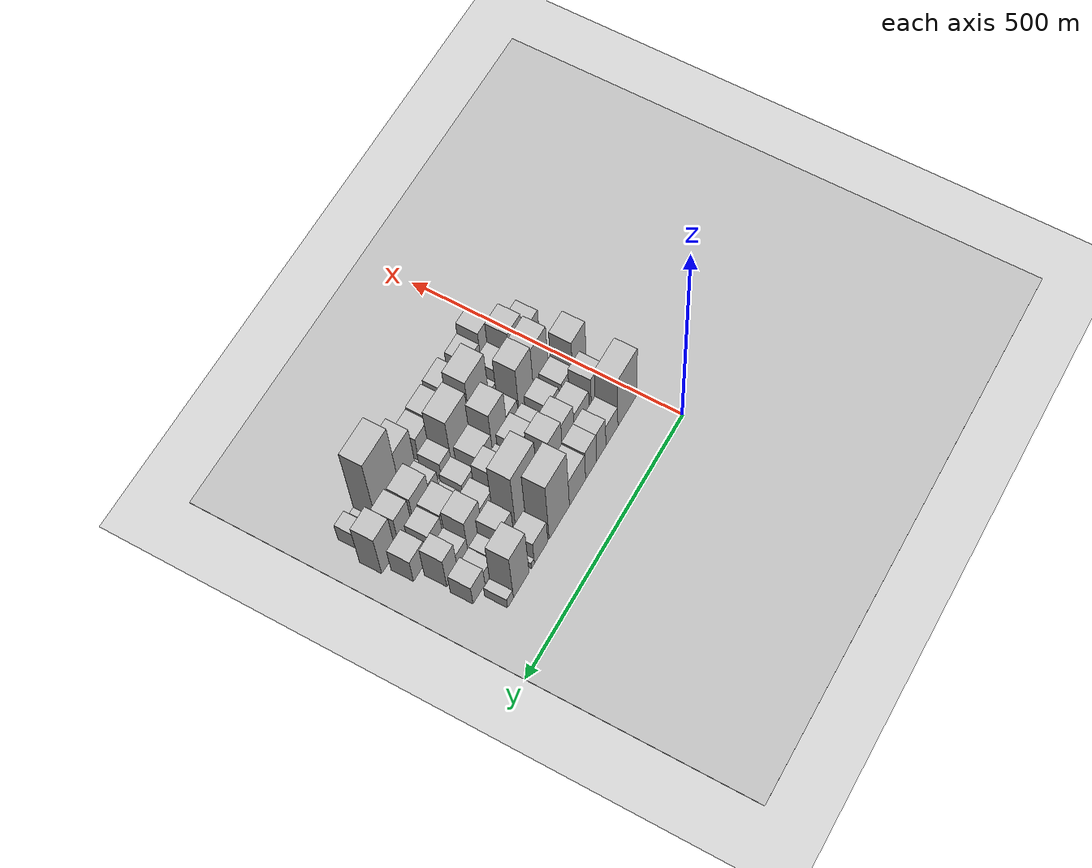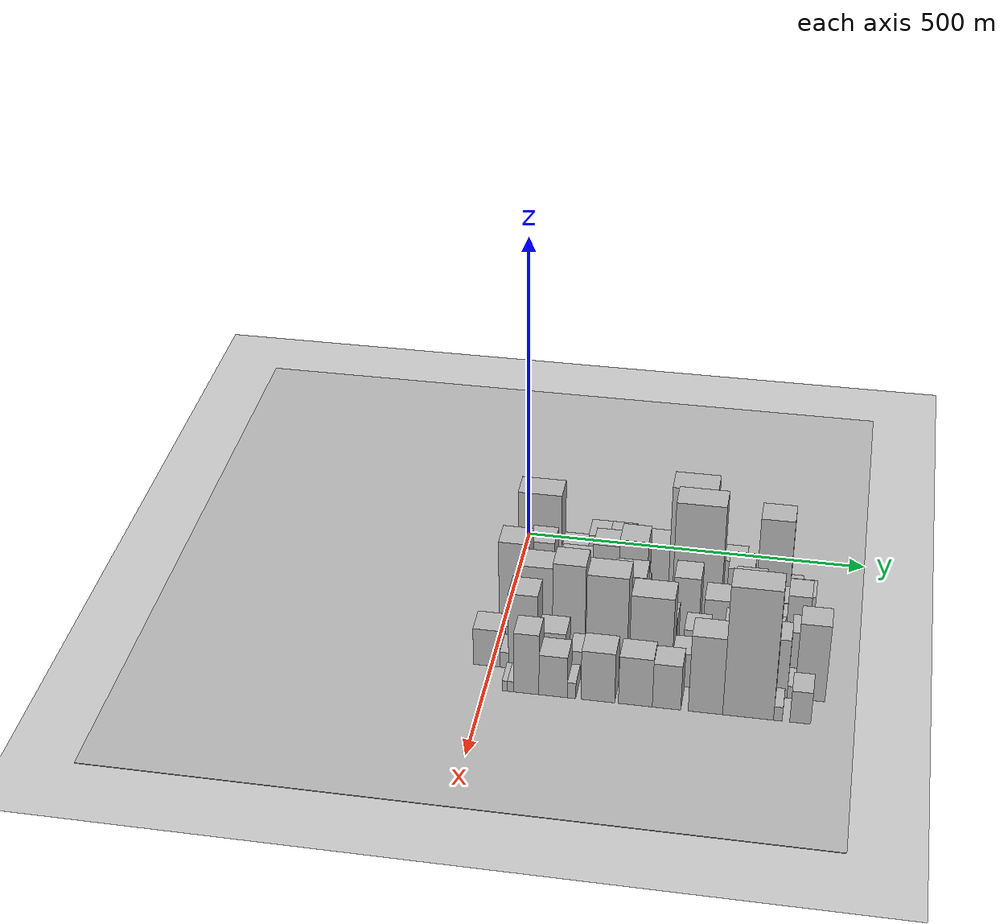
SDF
<sdf version="1.6">
 <world name="default">
  <include><name>ground_plane_1</name><uri>model://HANNAS_ground_plane</uri></include>
  <include>
   <name>ground_plane_2</name>
   <uri>model://HANNAS_ground_plane</uri>
   <pose>100 0 0  0 0 0</pose>
  </include>
  <model name="building_23">
   <static>1</static>
   <pose>100.0000 36.1751 0 0.000000 0.000000 0.000000</pose>
   <link name="link">
    <pose>0 0 79.50 0 0 0</pose>
    <collision name="collision"><geometry><box><size>40.0000 63.0457 159.0000</size></box></geometry></collision>
    <visual name="visual">
     <cast_shadows>0</cast_shadows>
     <geometry><box><size>40.0000 63.0457 159.0000</size></box></geometry>
     <material>
      <script>
       <uri>model://HANNAS_wall/materials/scripts</uri>
       <uri>model://HANNAS_wall/materials/textures</uri>
       <name>vrc/HANNAS_wall</name>
      </script>
     </material>
    </visual>
   </link>
  </model>
  <model name="building_24">
   <static>1</static>
   <pose>100.0000 87.2624 0 0.000000 0.000000 0.000000</pose>
   <link name="link">
    <pose>0 0 34.50 0 0 0</pose>
    <collision name="collision"><geometry><box><size>40.0000 39.1290 69.0000</size></box></geometry></collision>
    <visual name="visual">
     <cast_shadows>0</cast_shadows>
     <geometry><box><size>40.0000 39.1290 69.0000</size></box></geometry>
     <material>
      <script>
       <uri>model://HANNAS_wall/materials/scripts</uri>
       <uri>model://HANNAS_wall/materials/textures</uri>
       <name>vrc/HANNAS_wall</name>
      </script>
     </material>
    </visual>
   </link>
  </model>
  <model name="building_25">
   <static>1</static>
   <pose>100.0000 121.6511 0 0.000000 0.000000 0.000000</pose>
   <link name="link">
    <pose>0 0 48.00 0 0 0</pose>
    <collision name="collision"><geometry><box><size>40.0000 29.6482 96.0000</size></box></geometry></collision>
    <visual name="visual">
     <cast_shadows>0</cast_shadows>
     <geometry><box><size>40.0000 29.6482 96.0000</size></box></geometry>
     <material>
      <script>
       <uri>model://HANNAS_wall/materials/scripts</uri>
       <uri>model://HANNAS_wall/materials/textures</uri>
       <name>vrc/HANNAS_wall</name>
      </script>
     </material>
    </visual>
   </link>
  </model>
  <model name="building_26">
   <static>1</static>
   <pose>100.0000 154.2542 0 0.000000 0.000000 0.000000</pose>
   <link name="link">
    <pose>0 0 48.00 0 0 0</pose>
    <collision name="collision"><geometry><box><size>40.0000 35.5580 96.0000</size></box></geometry></collision>
    <visual name="visual">
     <cast_shadows>0</cast_shadows>
     <geometry><box><size>40.0000 35.5580 96.0000</size></box></geometry>
     <material>
      <script>
       <uri>model://HANNAS_wall/materials/scripts</uri>
       <uri>model://HANNAS_wall/materials/textures</uri>
       <name>vrc/HANNAS_wall</name>
      </script>
     </material>
    </visual>
   </link>
  </model>
  <model name="building_27">
   <static>1</static>
   <pose>100.0000 197.6740 0 0.000000 0.000000 0.000000</pose>
   <link name="link">
    <pose>0 0 45.00 0 0 0</pose>
    <collision name="collision"><geometry><box><size>40.0000 51.2816 90.0000</size></box></geometry></collision>
    <visual name="visual">
     <cast_shadows>0</cast_shadows>
     <geometry><box><size>40.0000 51.2816 90.0000</size></box></geometry>
     <material>
      <script>
       <uri>model://HANNAS_wall/materials/scripts</uri>
       <uri>model://HANNAS_wall/materials/textures</uri>
       <name>vrc/HANNAS_wall</name>
      </script>
     </material>
    </visual>
   </link>
  </model>
  <model name="building_28">
   <static>1</static>
   <pose>100.0000 255.1287 0 0.000000 0.000000 0.000000</pose>
   <link name="link">
    <pose>0 0 96.00 0 0 0</pose>
    <collision name="collision"><geometry><box><size>40.0000 63.6278 192.0000</size></box></geometry></collision>
    <visual name="visual">
     <cast_shadows>0</cast_shadows>
     <geometry><box><size>40.0000 63.6278 192.0000</size></box></geometry>
     <material>
      <script>
       <uri>model://HANNAS_wall/materials/scripts</uri>
       <uri>model://HANNAS_wall/materials/textures</uri>
       <name>vrc/HANNAS_wall</name>
      </script>
     </material>
    </visual>
   </link>
  </model>
  <model name="building_29">
   <static>1</static>
   <pose>100.0000 311.7444 0 0.000000 0.000000 0.000000</pose>
   <link name="link">
    <pose>0 0 37.50 0 0 0</pose>
    <collision name="collision"><geometry><box><size>40.0000 41.6035 75.0000</size></box></geometry></collision>
    <visual name="visual">
     <cast_shadows>0</cast_shadows>
     <geometry><box><size>40.0000 41.6035 75.0000</size></box></geometry>
     <material>
      <script>
       <uri>model://HANNAS_wall/materials/scripts</uri>
       <uri>model://HANNAS_wall/materials/textures</uri>
       <name>vrc/HANNAS_wall</name>
      </script>
     </material>
    </visual>
   </link>
  </model>
  <model name="building_30">
   <static>1</static>
   <pose>100.0000 337.1644 0 0.000000 0.000000 0.000000</pose>
   <link name="link">
    <pose>0 0 10.50 0 0 0</pose>
    <collision name="collision"><geometry><box><size>40.0000 9.2365 21.0000</size></box></geometry></collision>
    <visual name="visual">
     <cast_shadows>0</cast_shadows>
     <geometry><box><size>40.0000 9.2365 21.0000</size></box></geometry>
     <material>
      <script>
       <uri>model://HANNAS_wall/materials/scripts</uri>
       <uri>model://HANNAS_wall/materials/textures</uri>
       <name>vrc/HANNAS_wall</name>
      </script>
     </material>
    </visual>
   </link>
  </model>
  <model name="building_31">
   <static>1</static>
   <pose>100.0000 372.6004 0 0.000000 0.000000 0.000000</pose>
   <link name="link">
    <pose>0 0 76.50 0 0 0</pose>
    <collision name="collision"><geometry><box><size>40.0000 47.6355 153.0000</size></box></geometry></collision>
    <visual name="visual">
     <cast_shadows>0</cast_shadows>
     <geometry><box><size>40.0000 47.6355 153.0000</size></box></geometry>
     <material>
      <script>
       <uri>model://HANNAS_wall/materials/scripts</uri>
       <uri>model://HANNAS_wall/materials/textures</uri>
       <name>vrc/HANNAS_wall</name>
      </script>
     </material>
    </visual>
   </link>
  </model>
  <model name="building_32">
   <static>1</static>
   <pose>100.0000 405.4133 0 0.000000 0.000000 0.000000</pose>
   <link name="link">
    <pose>0 0 16.50 0 0 0</pose>
    <collision name="collision"><geometry><box><size>40.0000 17.9903 33.0000</size></box></geometry></collision>
    <visual name="visual">
     <cast_shadows>0</cast_shadows>
     <geometry><box><size>40.0000 17.9903 33.0000</size></box></geometry>
     <material>
      <script>
       <uri>model://HANNAS_wall/materials/scripts</uri>
       <uri>model://HANNAS_wall/materials/textures</uri>
       <name>vrc/HANNAS_wall</name>
      </script>
     </material>
    </visual>
   </link>
  </model>
  <model name="building_71">
   <static>1</static>
   <pose>149.0000 18.7210 0 0.000000 0.000000 0.000000</pose>
   <link name="link">
    <pose>0 0 18.00 0 0 0</pose>
    <collision name="collision"><geometry><box><size>40.0000 20.7294 36.0000</size></box></geometry></collision>
    <visual name="visual">
     <cast_shadows>0</cast_shadows>
     <geometry><box><size>40.0000 20.7294 36.0000</size></box></geometry>
     <material>
      <script>
       <uri>model://HANNAS_wall/materials/scripts</uri>
       <uri>model://HANNAS_wall/materials/textures</uri>
       <name>vrc/HANNAS_wall</name>
      </script>
     </material>
    </visual>
   </link>
  </model>
  <model name="building_72">
   <static>1</static>
   <pose>149.0000 47.0269 0 0.000000 0.000000 0.000000</pose>
   <link name="link">
    <pose>0 0 55.50 0 0 0</pose>
    <collision name="collision"><geometry><box><size>40.0000 35.8823 111.0000</size></box></geometry></collision>
    <visual name="visual">
     <cast_shadows>0</cast_shadows>
     <geometry><box><size>40.0000 35.8823 111.0000</size></box></geometry>
     <material>
      <script>
       <uri>model://HANNAS_wall/materials/scripts</uri>
       <uri>model://HANNAS_wall/materials/textures</uri>
       <name>vrc/HANNAS_wall</name>
      </script>
     </material>
    </visual>
   </link>
  </model>
  <model name="building_73">
   <static>1</static>
   <pose>149.0000 95.9971 0 0.000000 0.000000 0.000000</pose>
   <link name="link">
    <pose>0 0 42.00 0 0 0</pose>
    <collision name="collision"><geometry><box><size>40.0000 48.0582 84.0000</size></box></geometry></collision>
    <visual name="visual">
     <cast_shadows>0</cast_shadows>
     <geometry><box><size>40.0000 48.0582 84.0000</size></box></geometry>
     <material>
      <script>
       <uri>model://HANNAS_wall/materials/scripts</uri>
       <uri>model://HANNAS_wall/materials/textures</uri>
       <name>vrc/HANNAS_wall</name>
      </script>
     </material>
    </visual>
   </link>
  </model>
  <model name="building_74">
   <static>1</static>
   <pose>149.0000 138.6217 0 0.000000 0.000000 0.000000</pose>
   <link name="link">
    <pose>0 0 58.50 0 0 0</pose>
    <collision name="collision"><geometry><box><size>40.0000 37.1909 117.0000</size></box></geometry></collision>
    <visual name="visual">
     <cast_shadows>0</cast_shadows>
     <geometry><box><size>40.0000 37.1909 117.0000</size></box></geometry>
     <material>
      <script>
       <uri>model://HANNAS_wall/materials/scripts</uri>
       <uri>model://HANNAS_wall/materials/textures</uri>
       <name>vrc/HANNAS_wall</name>
      </script>
     </material>
    </visual>
   </link>
  </model>
  <model name="building_75">
   <static>1</static>
   <pose>149.0000 177.3120 0 0.000000 0.000000 0.000000</pose>
   <link name="link">
    <pose>0 0 64.50 0 0 0</pose>
    <collision name="collision"><geometry><box><size>40.0000 40.1896 129.0000</size></box></geometry></collision>
    <visual name="visual">
     <cast_shadows>0</cast_shadows>
     <geometry><box><size>40.0000 40.1896 129.0000</size></box></geometry>
     <material>
      <script>
       <uri>model://HANNAS_wall/materials/scripts</uri>
       <uri>model://HANNAS_wall/materials/textures</uri>
       <name>vrc/HANNAS_wall</name>
      </script>
     </material>
    </visual>
   </link>
  </model>
  <model name="building_76">
   <static>1</static>
   <pose>149.0000 202.5892 0 0.000000 0.000000 0.000000</pose>
   <link name="link">
    <pose>0 0 10.50 0 0 0</pose>
    <collision name="collision"><geometry><box><size>40.0000 10.3649 21.0000</size></box></geometry></collision>
    <visual name="visual">
     <cast_shadows>0</cast_shadows>
     <geometry><box><size>40.0000 10.3649 21.0000</size></box></geometry>
     <material>
      <script>
       <uri>model://HANNAS_wall/materials/scripts</uri>
       <uri>model://HANNAS_wall/materials/textures</uri>
       <name>vrc/HANNAS_wall</name>
      </script>
     </material>
    </visual>
   </link>
  </model>
  <model name="building_77">
   <static>1</static>
   <pose>149.0000 222.6302 0 0.000000 0.000000 0.000000</pose>
   <link name="link">
    <pose>0 0 10.50 0 0 0</pose>
    <collision name="collision"><geometry><box><size>40.0000 9.7170 21.0000</size></box></geometry></collision>
    <visual name="visual">
     <cast_shadows>0</cast_shadows>
     <geometry><box><size>40.0000 9.7170 21.0000</size></box></geometry>
     <material>
      <script>
       <uri>model://HANNAS_wall/materials/scripts</uri>
       <uri>model://HANNAS_wall/materials/textures</uri>
       <name>vrc/HANNAS_wall</name>
      </script>
     </material>
    </visual>
   </link>
  </model>
  <model name="building_78">
   <static>1</static>
   <pose>149.0000 268.1921 0 0.000000 0.000000 0.000000</pose>
   <link name="link">
    <pose>0 0 100.50 0 0 0</pose>
    <collision name="collision"><geometry><box><size>40.0000 69.4068 201.0000</size></box></geometry></collision>
    <visual name="visual">
     <cast_shadows>0</cast_shadows>
     <geometry><box><size>40.0000 69.4068 201.0000</size></box></geometry>
     <material>
      <script>
       <uri>model://HANNAS_wall/materials/scripts</uri>
       <uri>model://HANNAS_wall/materials/textures</uri>
       <name>vrc/HANNAS_wall</name>
      </script>
     </material>
    </visual>
   </link>
  </model>
  <model name="building_79">
   <static>1</static>
   <pose>149.0000 328.3466 0 0.000000 0.000000 0.000000</pose>
   <link name="link">
    <pose>0 0 49.50 0 0 0</pose>
    <collision name="collision"><geometry><box><size>40.0000 36.9022 99.0000</size></box></geometry></collision>
    <visual name="visual">
     <cast_shadows>0</cast_shadows>
     <geometry><box><size>40.0000 36.9022 99.0000</size></box></geometry>
     <material>
      <script>
       <uri>model://HANNAS_wall/materials/scripts</uri>
       <uri>model://HANNAS_wall/materials/textures</uri>
       <name>vrc/HANNAS_wall</name>
      </script>
     </material>
    </visual>
   </link>
  </model>
  <model name="building_80">
   <static>1</static>
   <pose>149.0000 359.9173 0 0.000000 0.000000 0.000000</pose>
   <link name="link">
    <pose>0 0 25.50 0 0 0</pose>
    <collision name="collision"><geometry><box><size>40.0000 26.2390 51.0000</size></box></geometry></collision>
    <visual name="visual">
     <cast_shadows>0</cast_shadows>
     <geometry><box><size>40.0000 26.2390 51.0000</size></box></geometry>
     <material>
      <script>
       <uri>model://HANNAS_wall/materials/scripts</uri>
       <uri>model://HANNAS_wall/materials/textures</uri>
       <name>vrc/HANNAS_wall</name>
      </script>
     </material>
    </visual>
   </link>
  </model>
  <model name="building_81">
   <static>1</static>
   <pose>149.0000 385.5031 0 0.000000 0.000000 0.000000</pose>
   <link name="link">
    <pose>0 0 24.00 0 0 0</pose>
    <collision name="collision"><geometry><box><size>40.0000 24.9328 48.0000</size></box></geometry></collision>
    <visual name="visual">
     <cast_shadows>0</cast_shadows>
     <geometry><box><size>40.0000 24.9328 48.0000</size></box></geometry>
     <material>
      <script>
       <uri>model://HANNAS_wall/materials/scripts</uri>
       <uri>model://HANNAS_wall/materials/textures</uri>
       <name>vrc/HANNAS_wall</name>
      </script>
     </material>
    </visual>
   </link>
  </model>
  <model name="building_82">
   <static>1</static>
   <pose>149.0000 415.9388 0 0.000000 0.000000 0.000000</pose>
   <link name="link">
    <pose>0 0 31.50 0 0 0</pose>
    <collision name="collision"><geometry><box><size>40.0000 35.9385 63.0000</size></box></geometry></collision>
    <visual name="visual">
     <cast_shadows>0</cast_shadows>
     <geometry><box><size>40.0000 35.9385 63.0000</size></box></geometry>
     <material>
      <script>
       <uri>model://HANNAS_wall/materials/scripts</uri>
       <uri>model://HANNAS_wall/materials/textures</uri>
       <name>vrc/HANNAS_wall</name>
      </script>
     </material>
    </visual>
   </link>
  </model>
  <model name="building_120">
   <static>1</static>
   <pose>198.0000 15.4298 0 0.000000 0.000000 0.000000</pose>
   <link name="link">
    <pose>0 0 70.50 0 0 0</pose>
    <collision name="collision"><geometry><box><size>40.0000 43.1489 141.0000</size></box></geometry></collision>
    <visual name="visual">
     <cast_shadows>0</cast_shadows>
     <geometry><box><size>40.0000 43.1489 141.0000</size></box></geometry>
     <material>
      <script>
       <uri>model://HANNAS_wall/materials/scripts</uri>
       <uri>model://HANNAS_wall/materials/textures</uri>
       <name>vrc/HANNAS_wall</name>
      </script>
     </material>
    </visual>
   </link>
  </model>
  <model name="building_121">
   <static>1</static>
   <pose>198.0000 54.9198 0 0.000000 0.000000 0.000000</pose>
   <link name="link">
    <pose>0 0 31.50 0 0 0</pose>
    <collision name="collision"><geometry><box><size>40.0000 35.8312 63.0000</size></box></geometry></collision>
    <visual name="visual">
     <cast_shadows>0</cast_shadows>
     <geometry><box><size>40.0000 35.8312 63.0000</size></box></geometry>
     <material>
      <script>
       <uri>model://HANNAS_wall/materials/scripts</uri>
       <uri>model://HANNAS_wall/materials/textures</uri>
       <name>vrc/HANNAS_wall</name>
      </script>
     </material>
    </visual>
   </link>
  </model>
  <model name="building_122">
   <static>1</static>
   <pose>198.0000 100.0027 0 0.000000 0.000000 0.000000</pose>
   <link name="link">
    <pose>0 0 33.00 0 0 0</pose>
    <collision name="collision"><geometry><box><size>40.0000 38.3345 66.0000</size></box></geometry></collision>
    <visual name="visual">
     <cast_shadows>0</cast_shadows>
     <geometry><box><size>40.0000 38.3345 66.0000</size></box></geometry>
     <material>
      <script>
       <uri>model://HANNAS_wall/materials/scripts</uri>
       <uri>model://HANNAS_wall/materials/textures</uri>
       <name>vrc/HANNAS_wall</name>
      </script>
     </material>
    </visual>
   </link>
  </model>
  <model name="building_123">
   <static>1</static>
   <pose>198.0000 143.9667 0 0.000000 0.000000 0.000000</pose>
   <link name="link">
    <pose>0 0 28.50 0 0 0</pose>
    <collision name="collision"><geometry><box><size>40.0000 33.5934 57.0000</size></box></geometry></collision>
    <visual name="visual">
     <cast_shadows>0</cast_shadows>
     <geometry><box><size>40.0000 33.5934 57.0000</size></box></geometry>
     <material>
      <script>
       <uri>model://HANNAS_wall/materials/scripts</uri>
       <uri>model://HANNAS_wall/materials/textures</uri>
       <name>vrc/HANNAS_wall</name>
      </script>
     </material>
    </visual>
   </link>
  </model>
  <model name="building_124">
   <static>1</static>
   <pose>198.0000 182.4248 0 0.000000 0.000000 0.000000</pose>
   <link name="link">
    <pose>0 0 42.00 0 0 0</pose>
    <collision name="collision"><geometry><box><size>40.0000 43.3229 84.0000</size></box></geometry></collision>
    <visual name="visual">
     <cast_shadows>0</cast_shadows>
     <geometry><box><size>40.0000 43.3229 84.0000</size></box></geometry>
     <material>
      <script>
       <uri>model://HANNAS_wall/materials/scripts</uri>
       <uri>model://HANNAS_wall/materials/textures</uri>
       <name>vrc/HANNAS_wall</name>
      </script>
     </material>
    </visual>
   </link>
  </model>
  <model name="building_125">
   <static>1</static>
   <pose>198.0000 223.7413 0 0.000000 0.000000 0.000000</pose>
   <link name="link">
    <pose>0 0 30.00 0 0 0</pose>
    <collision name="collision"><geometry><box><size>40.0000 31.3101 60.0000</size></box></geometry></collision>
    <visual name="visual">
     <cast_shadows>0</cast_shadows>
     <geometry><box><size>40.0000 31.3101 60.0000</size></box></geometry>
     <material>
      <script>
       <uri>model://HANNAS_wall/materials/scripts</uri>
       <uri>model://HANNAS_wall/materials/textures</uri>
       <name>vrc/HANNAS_wall</name>
      </script>
     </material>
    </visual>
   </link>
  </model>
  <model name="building_126">
   <static>1</static>
   <pose>198.0000 258.0294 0 0.000000 0.000000 0.000000</pose>
   <link name="link">
    <pose>0 0 55.50 0 0 0</pose>
    <collision name="collision"><geometry><box><size>40.0000 37.2662 111.0000</size></box></geometry></collision>
    <visual name="visual">
     <cast_shadows>0</cast_shadows>
     <geometry><box><size>40.0000 37.2662 111.0000</size></box></geometry>
     <material>
      <script>
       <uri>model://HANNAS_wall/materials/scripts</uri>
       <uri>model://HANNAS_wall/materials/textures</uri>
       <name>vrc/HANNAS_wall</name>
      </script>
     </material>
    </visual>
   </link>
  </model>
  <model name="building_127">
   <static>1</static>
   <pose>198.0000 302.6529 0 0.000000 0.000000 0.000000</pose>
   <link name="link">
    <pose>0 0 39.00 0 0 0</pose>
    <collision name="collision"><geometry><box><size>40.0000 39.9807 78.0000</size></box></geometry></collision>
    <visual name="visual">
     <cast_shadows>0</cast_shadows>
     <geometry><box><size>40.0000 39.9807 78.0000</size></box></geometry>
     <material>
      <script>
       <uri>model://HANNAS_wall/materials/scripts</uri>
       <uri>model://HANNAS_wall/materials/textures</uri>
       <name>vrc/HANNAS_wall</name>
      </script>
     </material>
    </visual>
   </link>
  </model>
  <model name="building_128">
   <static>1</static>
   <pose>198.0000 344.0075 0 0.000000 0.000000 0.000000</pose>
   <link name="link">
    <pose>0 0 55.50 0 0 0</pose>
    <collision name="collision"><geometry><box><size>40.0000 42.7285 111.0000</size></box></geometry></collision>
    <visual name="visual">
     <cast_shadows>0</cast_shadows>
     <geometry><box><size>40.0000 42.7285 111.0000</size></box></geometry>
     <material>
      <script>
       <uri>model://HANNAS_wall/materials/scripts</uri>
       <uri>model://HANNAS_wall/materials/textures</uri>
       <name>vrc/HANNAS_wall</name>
      </script>
     </material>
    </visual>
   </link>
  </model>
  <model name="building_129">
   <static>1</static>
   <pose>198.0000 381.1588 0 0.000000 0.000000 0.000000</pose>
   <link name="link">
    <pose>0 0 27.00 0 0 0</pose>
    <collision name="collision"><geometry><box><size>40.0000 31.5741 54.0000</size></box></geometry></collision>
    <visual name="visual">
     <cast_shadows>0</cast_shadows>
     <geometry><box><size>40.0000 31.5741 54.0000</size></box></geometry>
     <material>
      <script>
       <uri>model://HANNAS_wall/materials/scripts</uri>
       <uri>model://HANNAS_wall/materials/textures</uri>
       <name>vrc/HANNAS_wall</name>
      </script>
     </material>
    </visual>
   </link>
  </model>
  <model name="building_130">
   <static>1</static>
   <pose>198.0000 412.9474 0 0.000000 0.000000 0.000000</pose>
   <link name="link">
    <pose>0 0 49.50 0 0 0</pose>
    <collision name="collision"><geometry><box><size>40.0000 32.0030 99.0000</size></box></geometry></collision>
    <visual name="visual">
     <cast_shadows>0</cast_shadows>
     <geometry><box><size>40.0000 32.0030 99.0000</size></box></geometry>
     <material>
      <script>
       <uri>model://HANNAS_wall/materials/scripts</uri>
       <uri>model://HANNAS_wall/materials/textures</uri>
       <name>vrc/HANNAS_wall</name>
      </script>
     </material>
    </visual>
   </link>
  </model>
  <model name="building_166">
   <static>1</static>
   <pose>247.0000 21.2258 0 0.000000 0.000000 0.000000</pose>
   <link name="link">
    <pose>0 0 16.50 0 0 0</pose>
    <collision name="collision"><geometry><box><size>40.0000 18.5061 33.0000</size></box></geometry></collision>
    <visual name="visual">
     <cast_shadows>0</cast_shadows>
     <geometry><box><size>40.0000 18.5061 33.0000</size></box></geometry>
     <material>
      <script>
       <uri>model://HANNAS_wall/materials/scripts</uri>
       <uri>model://HANNAS_wall/materials/textures</uri>
       <name>vrc/HANNAS_wall</name>
      </script>
     </material>
    </visual>
   </link>
  </model>
  <model name="building_167">
   <static>1</static>
   <pose>247.0000 54.1543 0 0.000000 0.000000 0.000000</pose>
   <link name="link">
    <pose>0 0 70.50 0 0 0</pose>
    <collision name="collision"><geometry><box><size>40.0000 47.3509 141.0000</size></box></geometry></collision>
    <visual name="visual">
     <cast_shadows>0</cast_shadows>
     <geometry><box><size>40.0000 47.3509 141.0000</size></box></geometry>
     <material>
      <script>
       <uri>model://HANNAS_wall/materials/scripts</uri>
       <uri>model://HANNAS_wall/materials/textures</uri>
       <name>vrc/HANNAS_wall</name>
      </script>
     </material>
    </visual>
   </link>
  </model>
  <model name="building_168">
   <static>1</static>
   <pose>247.0000 100.7148 0 0.000000 0.000000 0.000000</pose>
   <link name="link">
    <pose>0 0 75.00 0 0 0</pose>
    <collision name="collision"><geometry><box><size>40.0000 45.7701 150.0000</size></box></geometry></collision>
    <visual name="visual">
     <cast_shadows>0</cast_shadows>
     <geometry><box><size>40.0000 45.7701 150.0000</size></box></geometry>
     <material>
      <script>
       <uri>model://HANNAS_wall/materials/scripts</uri>
       <uri>model://HANNAS_wall/materials/textures</uri>
       <name>vrc/HANNAS_wall</name>
      </script>
     </material>
    </visual>
   </link>
  </model>
  <model name="building_169">
   <static>1</static>
   <pose>247.0000 143.5671 0 0.000000 0.000000 0.000000</pose>
   <link name="link">
    <pose>0 0 28.50 0 0 0</pose>
    <collision name="collision"><geometry><box><size>40.0000 33.9347 57.0000</size></box></geometry></collision>
    <visual name="visual">
     <cast_shadows>0</cast_shadows>
     <geometry><box><size>40.0000 33.9347 57.0000</size></box></geometry>
     <material>
      <script>
       <uri>model://HANNAS_wall/materials/scripts</uri>
       <uri>model://HANNAS_wall/materials/textures</uri>
       <name>vrc/HANNAS_wall</name>
      </script>
     </material>
    </visual>
   </link>
  </model>
  <model name="building_170">
   <static>1</static>
   <pose>247.0000 183.0940 0 0.000000 0.000000 0.000000</pose>
   <link name="link">
    <pose>0 0 70.50 0 0 0</pose>
    <collision name="collision"><geometry><box><size>40.0000 45.1190 141.0000</size></box></geometry></collision>
    <visual name="visual">
     <cast_shadows>0</cast_shadows>
     <geometry><box><size>40.0000 45.1190 141.0000</size></box></geometry>
     <material>
      <script>
       <uri>model://HANNAS_wall/materials/scripts</uri>
       <uri>model://HANNAS_wall/materials/textures</uri>
       <name>vrc/HANNAS_wall</name>
      </script>
     </material>
    </visual>
   </link>
  </model>
  <model name="building_171">
   <static>1</static>
   <pose>247.0000 227.9298 0 0.000000 0.000000 0.000000</pose>
   <link name="link">
    <pose>0 0 37.50 0 0 0</pose>
    <collision name="collision"><geometry><box><size>40.0000 44.5527 75.0000</size></box></geometry></collision>
    <visual name="visual">
     <cast_shadows>0</cast_shadows>
     <geometry><box><size>40.0000 44.5527 75.0000</size></box></geometry>
     <material>
      <script>
       <uri>model://HANNAS_wall/materials/scripts</uri>
       <uri>model://HANNAS_wall/materials/textures</uri>
       <name>vrc/HANNAS_wall</name>
      </script>
     </material>
    </visual>
   </link>
  </model>
  <model name="building_172">
   <static>1</static>
   <pose>247.0000 277.5979 0 0.000000 0.000000 0.000000</pose>
   <link name="link">
    <pose>0 0 30.00 0 0 0</pose>
    <collision name="collision"><geometry><box><size>40.0000 34.7835 60.0000</size></box></geometry></collision>
    <visual name="visual">
     <cast_shadows>0</cast_shadows>
     <geometry><box><size>40.0000 34.7835 60.0000</size></box></geometry>
     <material>
      <script>
       <uri>model://HANNAS_wall/materials/scripts</uri>
       <uri>model://HANNAS_wall/materials/textures</uri>
       <name>vrc/HANNAS_wall</name>
      </script>
     </material>
    </visual>
   </link>
  </model>
  <model name="building_173">
   <static>1</static>
   <pose>247.0000 304.6770 0 0.000000 0.000000 0.000000</pose>
   <link name="link">
    <pose>0 0 18.00 0 0 0</pose>
    <collision name="collision"><geometry><box><size>40.0000 19.3748 36.0000</size></box></geometry></collision>
    <visual name="visual">
     <cast_shadows>0</cast_shadows>
     <geometry><box><size>40.0000 19.3748 36.0000</size></box></geometry>
     <material>
      <script>
       <uri>model://HANNAS_wall/materials/scripts</uri>
       <uri>model://HANNAS_wall/materials/textures</uri>
       <name>vrc/HANNAS_wall</name>
      </script>
     </material>
    </visual>
   </link>
  </model>
  <model name="building_174">
   <static>1</static>
   <pose>247.0000 336.6226 0 0.000000 0.000000 0.000000</pose>
   <link name="link">
    <pose>0 0 37.50 0 0 0</pose>
    <collision name="collision"><geometry><box><size>40.0000 44.5166 75.0000</size></box></geometry></collision>
    <visual name="visual">
     <cast_shadows>0</cast_shadows>
     <geometry><box><size>40.0000 44.5166 75.0000</size></box></geometry>
     <material>
      <script>
       <uri>model://HANNAS_wall/materials/scripts</uri>
       <uri>model://HANNAS_wall/materials/textures</uri>
       <name>vrc/HANNAS_wall</name>
      </script>
     </material>
    </visual>
   </link>
  </model>
  <model name="building_175">
   <static>1</static>
   <pose>247.0000 377.2853 0 0.000000 0.000000 0.000000</pose>
   <link name="link">
    <pose>0 0 34.50 0 0 0</pose>
    <collision name="collision"><geometry><box><size>40.0000 36.8088 69.0000</size></box></geometry></collision>
    <visual name="visual">
     <cast_shadows>0</cast_shadows>
     <geometry><box><size>40.0000 36.8088 69.0000</size></box></geometry>
     <material>
      <script>
       <uri>model://HANNAS_wall/materials/scripts</uri>
       <uri>model://HANNAS_wall/materials/textures</uri>
       <name>vrc/HANNAS_wall</name>
      </script>
     </material>
    </visual>
   </link>
  </model>
  <model name="building_176">
   <static>1</static>
   <pose>247.0000 425.7697 0 0.000000 0.000000 0.000000</pose>
   <link name="link">
    <pose>0 0 37.50 0 0 0</pose>
    <collision name="collision"><geometry><box><size>40.0000 40.1599 75.0000</size></box></geometry></collision>
    <visual name="visual">
     <cast_shadows>0</cast_shadows>
     <geometry><box><size>40.0000 40.1599 75.0000</size></box></geometry>
     <material>
      <script>
       <uri>model://HANNAS_wall/materials/scripts</uri>
       <uri>model://HANNAS_wall/materials/textures</uri>
       <name>vrc/HANNAS_wall</name>
      </script>
     </material>
    </visual>
   </link>
  </model>
  <model name="building_211">
   <static>1</static>
   <pose>296.0000 -6.0958 0 0.000000 0.000000 0.000000</pose>
   <link name="link">
    <pose>0 0 31.50 0 0 0</pose>
    <collision name="collision"><geometry><box><size>40.0000 37.0488 63.0000</size></box></geometry></collision>
    <visual name="visual">
     <cast_shadows>0</cast_shadows>
     <geometry><box><size>40.0000 37.0488 63.0000</size></box></geometry>
     <material>
      <script>
       <uri>model://HANNAS_wall/materials/scripts</uri>
       <uri>model://HANNAS_wall/materials/textures</uri>
       <name>vrc/HANNAS_wall</name>
      </script>
     </material>
    </visual>
   </link>
  </model>
  <model name="building_212">
   <static>1</static>
   <pose>296.0000 18.4935 0 0.000000 0.000000 0.000000</pose>
   <link name="link">
    <pose>0 0 13.50 0 0 0</pose>
    <collision name="collision"><geometry><box><size>40.0000 12.1298 27.0000</size></box></geometry></collision>
    <visual name="visual">
     <cast_shadows>0</cast_shadows>
     <geometry><box><size>40.0000 12.1298 27.0000</size></box></geometry>
     <material>
      <script>
       <uri>model://HANNAS_wall/materials/scripts</uri>
       <uri>model://HANNAS_wall/materials/textures</uri>
       <name>vrc/HANNAS_wall</name>
      </script>
     </material>
    </visual>
   </link>
  </model>
  <model name="building_213">
   <static>1</static>
   <pose>296.0000 44.9149 0 0.000000 0.000000 0.000000</pose>
   <link name="link">
    <pose>0 0 64.50 0 0 0</pose>
    <collision name="collision"><geometry><box><size>40.0000 40.7130 129.0000</size></box></geometry></collision>
    <visual name="visual">
     <cast_shadows>0</cast_shadows>
     <geometry><box><size>40.0000 40.7130 129.0000</size></box></geometry>
     <material>
      <script>
       <uri>model://HANNAS_wall/materials/scripts</uri>
       <uri>model://HANNAS_wall/materials/textures</uri>
       <name>vrc/HANNAS_wall</name>
      </script>
     </material>
    </visual>
   </link>
  </model>
  <model name="building_214">
   <static>1</static>
   <pose>296.0000 84.7543 0 0.000000 0.000000 0.000000</pose>
   <link name="link">
    <pose>0 0 34.50 0 0 0</pose>
    <collision name="collision"><geometry><box><size>40.0000 38.9658 69.0000</size></box></geometry></collision>
    <visual name="visual">
     <cast_shadows>0</cast_shadows>
     <geometry><box><size>40.0000 38.9658 69.0000</size></box></geometry>
     <material>
      <script>
       <uri>model://HANNAS_wall/materials/scripts</uri>
       <uri>model://HANNAS_wall/materials/textures</uri>
       <name>vrc/HANNAS_wall</name>
      </script>
     </material>
    </visual>
   </link>
  </model>
  <model name="building_215">
   <static>1</static>
   <pose>296.0000 120.3159 0 0.000000 0.000000 0.000000</pose>
   <link name="link">
    <pose>0 0 21.00 0 0 0</pose>
    <collision name="collision"><geometry><box><size>40.0000 22.1574 42.0000</size></box></geometry></collision>
    <visual name="visual">
     <cast_shadows>0</cast_shadows>
     <geometry><box><size>40.0000 22.1574 42.0000</size></box></geometry>
     <material>
      <script>
       <uri>model://HANNAS_wall/materials/scripts</uri>
       <uri>model://HANNAS_wall/materials/textures</uri>
       <name>vrc/HANNAS_wall</name>
      </script>
     </material>
    </visual>
   </link>
  </model>
  <model name="building_216">
   <static>1</static>
   <pose>296.0000 159.7885 0 0.000000 0.000000 0.000000</pose>
   <link name="link">
    <pose>0 0 87.00 0 0 0</pose>
    <collision name="collision"><geometry><box><size>40.0000 56.7877 174.0000</size></box></geometry></collision>
    <visual name="visual">
     <cast_shadows>0</cast_shadows>
     <geometry><box><size>40.0000 56.7877 174.0000</size></box></geometry>
     <material>
      <script>
       <uri>model://HANNAS_wall/materials/scripts</uri>
       <uri>model://HANNAS_wall/materials/textures</uri>
       <name>vrc/HANNAS_wall</name>
      </script>
     </material>
    </visual>
   </link>
  </model>
  <model name="building_217">
   <static>1</static>
   <pose>296.0000 220.5012 0 0.000000 0.000000 0.000000</pose>
   <link name="link">
    <pose>0 0 73.50 0 0 0</pose>
    <collision name="collision"><geometry><box><size>40.0000 58.6378 147.0000</size></box></geometry></collision>
    <visual name="visual">
     <cast_shadows>0</cast_shadows>
     <geometry><box><size>40.0000 58.6378 147.0000</size></box></geometry>
     <material>
      <script>
       <uri>model://HANNAS_wall/materials/scripts</uri>
       <uri>model://HANNAS_wall/materials/textures</uri>
       <name>vrc/HANNAS_wall</name>
      </script>
     </material>
    </visual>
   </link>
  </model>
  <model name="building_218">
   <static>1</static>
   <pose>296.0000 264.8470 0 0.000000 0.000000 0.000000</pose>
   <link name="link">
    <pose>0 0 28.50 0 0 0</pose>
    <collision name="collision"><geometry><box><size>40.0000 30.0537 57.0000</size></box></geometry></collision>
    <visual name="visual">
     <cast_shadows>0</cast_shadows>
     <geometry><box><size>40.0000 30.0537 57.0000</size></box></geometry>
     <material>
      <script>
       <uri>model://HANNAS_wall/materials/scripts</uri>
       <uri>model://HANNAS_wall/materials/textures</uri>
       <name>vrc/HANNAS_wall</name>
      </script>
     </material>
    </visual>
   </link>
  </model>
  <model name="building_219">
   <static>1</static>
   <pose>296.0000 302.8746 0 0.000000 0.000000 0.000000</pose>
   <link name="link">
    <pose>0 0 25.50 0 0 0</pose>
    <collision name="collision"><geometry><box><size>40.0000 26.0016 51.0000</size></box></geometry></collision>
    <visual name="visual">
     <cast_shadows>0</cast_shadows>
     <geometry><box><size>40.0000 26.0016 51.0000</size></box></geometry>
     <material>
      <script>
       <uri>model://HANNAS_wall/materials/scripts</uri>
       <uri>model://HANNAS_wall/materials/textures</uri>
       <name>vrc/HANNAS_wall</name>
      </script>
     </material>
    </visual>
   </link>
  </model>
  <model name="building_220">
   <static>1</static>
   <pose>296.0000 339.8892 0 0.000000 0.000000 0.000000</pose>
   <link name="link">
    <pose>0 0 45.00 0 0 0</pose>
    <collision name="collision"><geometry><box><size>40.0000 48.0276 90.0000</size></box></geometry></collision>
    <visual name="visual">
     <cast_shadows>0</cast_shadows>
     <geometry><box><size>40.0000 48.0276 90.0000</size></box></geometry>
     <material>
      <script>
       <uri>model://HANNAS_wall/materials/scripts</uri>
       <uri>model://HANNAS_wall/materials/textures</uri>
       <name>vrc/HANNAS_wall</name>
      </script>
     </material>
    </visual>
   </link>
  </model>
  <model name="building_221">
   <static>1</static>
   <pose>296.0000 387.9803 0 0.000000 0.000000 0.000000</pose>
   <link name="link">
    <pose>0 0 49.50 0 0 0</pose>
    <collision name="collision"><geometry><box><size>40.0000 38.1547 99.0000</size></box></geometry></collision>
    <visual name="visual">
     <cast_shadows>0</cast_shadows>
     <geometry><box><size>40.0000 38.1547 99.0000</size></box></geometry>
     <material>
      <script>
       <uri>model://HANNAS_wall/materials/scripts</uri>
       <uri>model://HANNAS_wall/materials/textures</uri>
       <name>vrc/HANNAS_wall</name>
      </script>
     </material>
    </visual>
   </link>
  </model>
  <model name="building_222">
   <static>1</static>
   <pose>296.0000 412.0008 0 0.000000 0.000000 0.000000</pose>
   <link name="link">
    <pose>0 0 10.50 0 0 0</pose>
    <collision name="collision"><geometry><box><size>40.0000 9.8862 21.0000</size></box></geometry></collision>
    <visual name="visual">
     <cast_shadows>0</cast_shadows>
     <geometry><box><size>40.0000 9.8862 21.0000</size></box></geometry>
     <material>
      <script>
       <uri>model://HANNAS_wall/materials/scripts</uri>
       <uri>model://HANNAS_wall/materials/textures</uri>
       <name>vrc/HANNAS_wall</name>
      </script>
     </material>
    </visual>
   </link>
  </model>
  <model name="building_223">
   <static>1</static>
   <pose>296.0000 437.5826 0 0.000000 0.000000 0.000000</pose>
   <link name="link">
    <pose>0 0 64.50 0 0 0</pose>
    <collision name="collision"><geometry><box><size>40.0000 41.2776 129.0000</size></box></geometry></collision>
    <visual name="visual">
     <cast_shadows>0</cast_shadows>
     <geometry><box><size>40.0000 41.2776 129.0000</size></box></geometry>
     <material>
      <script>
       <uri>model://HANNAS_wall/materials/scripts</uri>
       <uri>model://HANNAS_wall/materials/textures</uri>
       <name>vrc/HANNAS_wall</name>
      </script>
     </material>
    </visual>
   </link>
  </model>
  <model name="building_257">
   <static>1</static>
   <pose>345.0000 27.9882 0 0.000000 0.000000 0.000000</pose>
   <link name="link">
    <pose>0 0 9.00 0 0 0</pose>
    <collision name="collision"><geometry><box><size>40.0000 7.2327 18.0000</size></box></geometry></collision>
    <visual name="visual">
     <cast_shadows>0</cast_shadows>
     <geometry><box><size>40.0000 7.2327 18.0000</size></box></geometry>
     <material>
      <script>
       <uri>model://HANNAS_wall/materials/scripts</uri>
       <uri>model://HANNAS_wall/materials/textures</uri>
       <name>vrc/HANNAS_wall</name>
      </script>
     </material>
    </visual>
   </link>
  </model>
  <model name="building_258">
   <static>1</static>
   <pose>345.0000 35.9113 0 0.000000 0.000000 0.000000</pose>
   <link name="link">
    <pose>0 0 9.00 0 0 0</pose>
    <collision name="collision"><geometry><box><size>40.0000 8.6136 18.0000</size></box></geometry></collision>
    <visual name="visual">
     <cast_shadows>0</cast_shadows>
     <geometry><box><size>40.0000 8.6136 18.0000</size></box></geometry>
     <material>
      <script>
       <uri>model://HANNAS_wall/materials/scripts</uri>
       <uri>model://HANNAS_wall/materials/textures</uri>
       <name>vrc/HANNAS_wall</name>
      </script>
     </material>
    </visual>
   </link>
  </model>
  <model name="building_259">
   <static>1</static>
   <pose>345.0000 57.6067 0 0.000000 0.000000 0.000000</pose>
   <link name="link">
    <pose>0 0 51.00 0 0 0</pose>
    <collision name="collision"><geometry><box><size>40.0000 34.7772 102.0000</size></box></geometry></collision>
    <visual name="visual">
     <cast_shadows>0</cast_shadows>
     <geometry><box><size>40.0000 34.7772 102.0000</size></box></geometry>
     <material>
      <script>
       <uri>model://HANNAS_wall/materials/scripts</uri>
       <uri>model://HANNAS_wall/materials/textures</uri>
       <name>vrc/HANNAS_wall</name>
      </script>
     </material>
    </visual>
   </link>
  </model>
  <model name="building_260">
   <static>1</static>
   <pose>345.0000 94.4721 0 0.000000 0.000000 0.000000</pose>
   <link name="link">
    <pose>0 0 34.50 0 0 0</pose>
    <collision name="collision"><geometry><box><size>40.0000 38.9536 69.0000</size></box></geometry></collision>
    <visual name="visual">
     <cast_shadows>0</cast_shadows>
     <geometry><box><size>40.0000 38.9536 69.0000</size></box></geometry>
     <material>
      <script>
       <uri>model://HANNAS_wall/materials/scripts</uri>
       <uri>model://HANNAS_wall/materials/textures</uri>
       <name>vrc/HANNAS_wall</name>
      </script>
     </material>
    </visual>
   </link>
  </model>
  <model name="building_261">
   <static>1</static>
   <pose>345.0000 119.7421 0 0.000000 0.000000 0.000000</pose>
   <link name="link">
    <pose>0 0 13.50 0 0 0</pose>
    <collision name="collision"><geometry><box><size>40.0000 11.5863 27.0000</size></box></geometry></collision>
    <visual name="visual">
     <cast_shadows>0</cast_shadows>
     <geometry><box><size>40.0000 11.5863 27.0000</size></box></geometry>
     <material>
      <script>
       <uri>model://HANNAS_wall/materials/scripts</uri>
       <uri>model://HANNAS_wall/materials/textures</uri>
       <name>vrc/HANNAS_wall</name>
      </script>
     </material>
    </visual>
   </link>
  </model>
  <model name="building_262">
   <static>1</static>
   <pose>345.0000 155.5573 0 0.000000 0.000000 0.000000</pose>
   <link name="link">
    <pose>0 0 42.00 0 0 0</pose>
    <collision name="collision"><geometry><box><size>40.0000 46.0441 84.0000</size></box></geometry></collision>
    <visual name="visual">
     <cast_shadows>0</cast_shadows>
     <geometry><box><size>40.0000 46.0441 84.0000</size></box></geometry>
     <material>
      <script>
       <uri>model://HANNAS_wall/materials/scripts</uri>
       <uri>model://HANNAS_wall/materials/textures</uri>
       <name>vrc/HANNAS_wall</name>
      </script>
     </material>
    </visual>
   </link>
  </model>
  <model name="building_263">
   <static>1</static>
   <pose>345.0000 206.5956 0 0.000000 0.000000 0.000000</pose>
   <link name="link">
    <pose>0 0 40.50 0 0 0</pose>
    <collision name="collision"><geometry><box><size>40.0000 46.0326 81.0000</size></box></geometry></collision>
    <visual name="visual">
     <cast_shadows>0</cast_shadows>
     <geometry><box><size>40.0000 46.0326 81.0000</size></box></geometry>
     <material>
      <script>
       <uri>model://HANNAS_wall/materials/scripts</uri>
       <uri>model://HANNAS_wall/materials/textures</uri>
       <name>vrc/HANNAS_wall</name>
      </script>
     </material>
    </visual>
   </link>
  </model>
  <model name="building_264">
   <static>1</static>
   <pose>345.0000 248.8564 0 0.000000 0.000000 0.000000</pose>
   <link name="link">
    <pose>0 0 37.50 0 0 0</pose>
    <collision name="collision"><geometry><box><size>40.0000 38.4889 75.0000</size></box></geometry></collision>
    <visual name="visual">
     <cast_shadows>0</cast_shadows>
     <geometry><box><size>40.0000 38.4889 75.0000</size></box></geometry>
     <material>
      <script>
       <uri>model://HANNAS_wall/materials/scripts</uri>
       <uri>model://HANNAS_wall/materials/textures</uri>
       <name>vrc/HANNAS_wall</name>
      </script>
     </material>
    </visual>
   </link>
  </model>
  <model name="building_265">
   <static>1</static>
   <pose>345.0000 301.2578 0 0.000000 0.000000 0.000000</pose>
   <link name="link">
    <pose>0 0 64.50 0 0 0</pose>
    <collision name="collision"><geometry><box><size>40.0000 46.3139 129.0000</size></box></geometry></collision>
    <visual name="visual">
     <cast_shadows>0</cast_shadows>
     <geometry><box><size>40.0000 46.3139 129.0000</size></box></geometry>
     <material>
      <script>
       <uri>model://HANNAS_wall/materials/scripts</uri>
       <uri>model://HANNAS_wall/materials/textures</uri>
       <name>vrc/HANNAS_wall</name>
      </script>
     </material>
    </visual>
   </link>
  </model>
  <model name="building_266">
   <static>1</static>
   <pose>345.0000 358.4242 0 0.000000 0.000000 0.000000</pose>
   <link name="link">
    <pose>0 0 108.00 0 0 0</pose>
    <collision name="collision"><geometry><box><size>40.0000 68.0189 216.0000</size></box></geometry></collision>
    <visual name="visual">
     <cast_shadows>0</cast_shadows>
     <geometry><box><size>40.0000 68.0189 216.0000</size></box></geometry>
     <material>
      <script>
       <uri>model://HANNAS_wall/materials/scripts</uri>
       <uri>model://HANNAS_wall/materials/textures</uri>
       <name>vrc/HANNAS_wall</name>
      </script>
     </material>
    </visual>
   </link>
  </model>
  <model name="building_267">
   <static>1</static>
   <pose>345.0000 398.2182 0 0.000000 0.000000 0.000000</pose>
   <link name="link">
    <pose>0 0 12.00 0 0 0</pose>
    <collision name="collision"><geometry><box><size>40.0000 11.5692 24.0000</size></box></geometry></collision>
    <visual name="visual">
     <cast_shadows>0</cast_shadows>
     <geometry><box><size>40.0000 11.5692 24.0000</size></box></geometry>
     <material>
      <script>
       <uri>model://HANNAS_wall/materials/scripts</uri>
       <uri>model://HANNAS_wall/materials/textures</uri>
       <name>vrc/HANNAS_wall</name>
      </script>
     </material>
    </visual>
   </link>
  </model>
  <model name="building_268">
   <static>1</static>
   <pose>345.0000 427.9336 0 0.000000 0.000000 0.000000</pose>
   <link name="link">
    <pose>0 0 27.00 0 0 0</pose>
    <collision name="collision"><geometry><box><size>40.0000 27.8615 54.0000</size></box></geometry></collision>
    <visual name="visual">
     <cast_shadows>0</cast_shadows>
     <geometry><box><size>40.0000 27.8615 54.0000</size></box></geometry>
     <material>
      <script>
       <uri>model://HANNAS_wall/materials/scripts</uri>
       <uri>model://HANNAS_wall/materials/textures</uri>
       <name>vrc/HANNAS_wall</name>
      </script>
     </material>
    </visual>
   </link>
  </model>
 </world>
</sdf>
